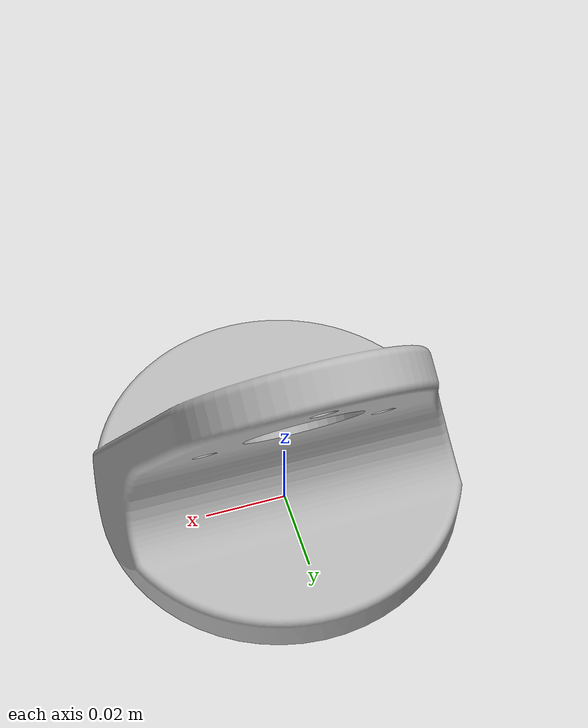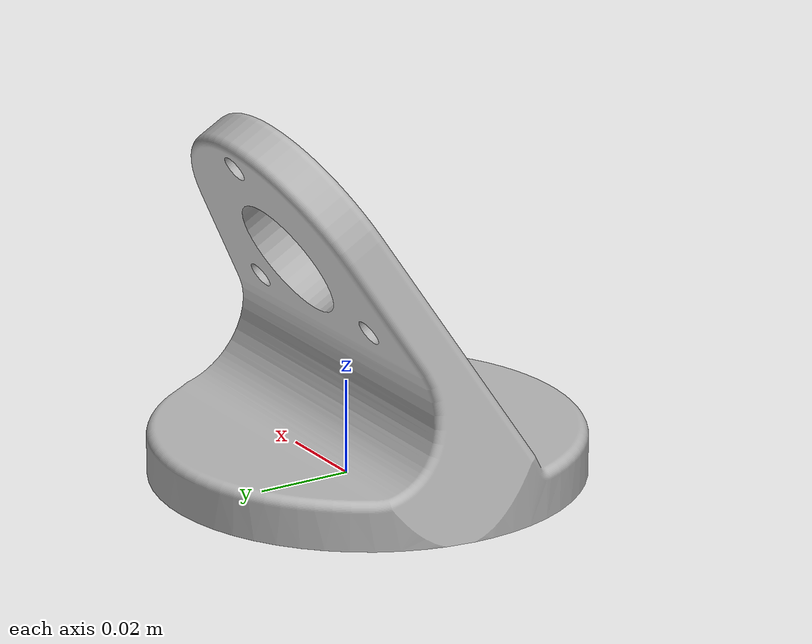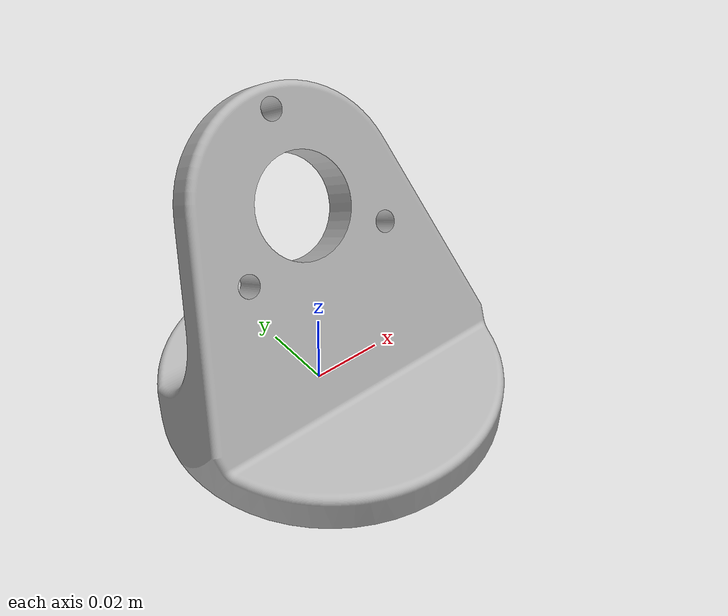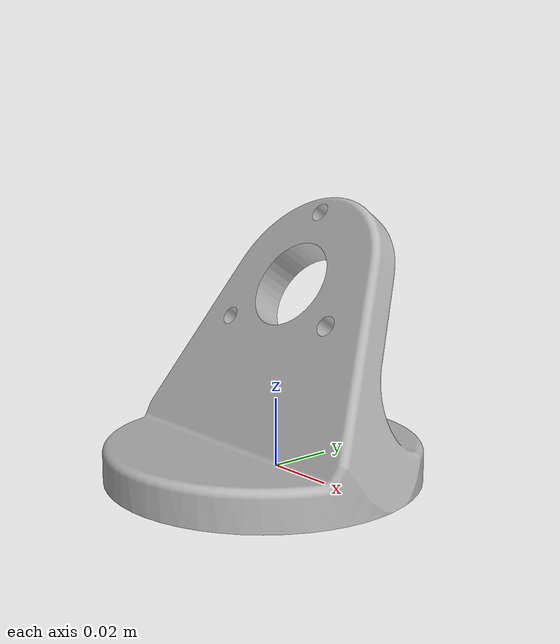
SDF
<?xml version="1.0"?>
<sdf version="1.4">
  <model name='my_model'>
    <link name='my_link'>
      <inertial>
        <mass>1.0</mass>
        <inertia>
          <ixx>0.1</ixx>
          <ixy>0.0</ixy>
	  <ixz>0.0</ixz>
          <iyy>0.1</iyy>
          <iyz>0.0</iyz>
          <izz>0.1</izz>
        </inertia>
      </inertial>
      <collision name='my_collision'>
	<pose> -0.1 0.04 0 1.5708 0 0</pose>
        <geometry>
          <mesh>
            <uri>model://my_model/my_mesh.stl</uri>
            <scale>0.001 0.001 0.001</scale>
          </mesh>
        </geometry>
      </collision>
      <visual name='my_visual'>
	<pose> -0.1 0.04 0 1.5708 0 0</pose>
        <geometry>
          <mesh>
            <uri>model://my_model/my_mesh.stl</uri>
            <scale>0.001 0.001 0.001</scale>
          </mesh>
        </geometry>
      </visual>
    </link>
  </model>
</sdf>
